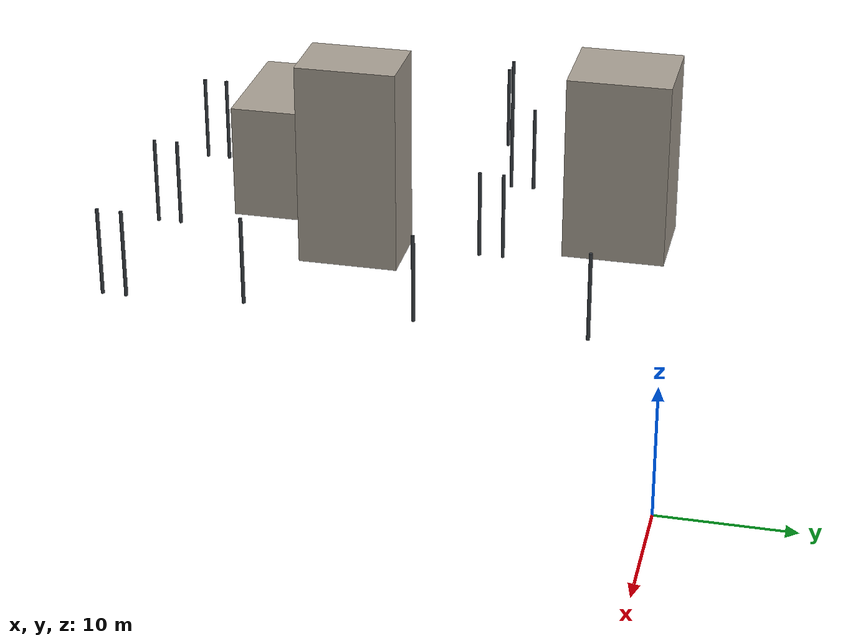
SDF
<sdf version="1.5">
 <world name="robocup_training_city_full_s7">
  <model name="building_0164">
   <static>true</static>
   <pose>-45.22436 -36.002927 0 0 0 0</pose>
   <link name="link">
    <pose>0 0 4.933902 0 0 0</pose>
    <collision name="collision">
     <geometry><box><size>11.184322 11.914767 9.867803</size></box></geometry>
     <surface><friction><ode><mu>1</mu><mu2>1</mu2></ode></friction></surface>
    </collision>
    <visual name="visual">
     <geometry><box><size>11.184322 11.914767 9.867803</size></box></geometry>
     <material>
      <ambient>0.297 0.2835 0.261 1</ambient>
      <diffuse>0.66 0.63 0.58 1</diffuse>
      <specular>0.04 0.04 0.04 1</specular>
      <emissive>0 0 0 1</emissive>
     </material>
    </visual>
    <inertial>
     <mass>1</mass>
     <inertia>
      <ixx>19.944601</ixx>
      <ixy>0</ixy>
      <ixz>0</ixz>
      <iyy>18.53855</iyy>
      <iyz>0</iyz>
      <izz>22.254228</izz>
     </inertia>
    </inertial>
   </link>
  </model>
  <model name="building_0171">
   <static>true</static>
   <pose>-34.935963 -29.924366 0 0 0 0</pose>
   <link name="link">
    <pose>0 0 8.61469 0 0 0</pose>
    <collision name="collision">
     <geometry><box><size>5.716327 8.323339 17.22938</size></box></geometry>
     <surface><friction><ode><mu>1</mu><mu2>1</mu2></ode></friction></surface>
    </collision>
    <visual name="visual">
     <geometry><box><size>5.716327 8.323339 17.22938</size></box></geometry>
     <material>
      <ambient>0.297 0.2835 0.261 1</ambient>
      <diffuse>0.66 0.63 0.58 1</diffuse>
      <specular>0.04 0.04 0.04 1</specular>
      <emissive>0 0 0 1</emissive>
     </material>
    </visual>
    <inertial>
     <mass>1</mass>
     <inertia>
      <ixx>30.510792</ixx>
      <ixy>0</ixy>
      <ixz>0</ixz>
      <iyy>27.460661</iyy>
      <iyz>0</iyz>
      <izz>8.496197</izz>
     </inertia>
    </inertial>
   </link>
  </model>
  <model name="building_1106">
   <static>true</static>
   <pose>-41.575823 -8.622747 0 0 0 0</pose>
   <link name="link">
    <pose>0 0 7.890977 0 0 0</pose>
    <collision name="collision">
     <geometry><box><size>7.577471 8.568934 15.781954</size></box></geometry>
     <surface><friction><ode><mu>1</mu><mu2>1</mu2></ode></friction></surface>
    </collision>
    <visual name="visual">
     <geometry><box><size>7.577471 8.568934 15.781954</size></box></geometry>
     <material>
      <ambient>0.297 0.2835 0.261 1</ambient>
      <diffuse>0.66 0.63 0.58 1</diffuse>
      <specular>0.04 0.04 0.04 1</specular>
      <emissive>0 0 0 1</emissive>
     </material>
    </visual>
    <inertial>
     <mass>1</mass>
     <inertia>
      <ixx>26.874725</ixx>
      <ixy>0</ixy>
      <ixz>0</ixz>
      <iyy>25.540678</iyy>
      <iyz>0</iyz>
      <izz>10.903725</izz>
     </inertia>
    </inertial>
   </link>
  </model>
  <model name="lamp_post_2517">
   <static>true</static>
   <pose>-61.4 -35.696036 0 0 0 0</pose>
   <link name="link">
    <pose>0 0 3.75 0 0 0</pose>
    <collision name="collision">
     <geometry><cylinder><radius>0.15</radius><length>7.5</length></cylinder></geometry>
     <surface><friction><ode><mu>1</mu><mu2>1</mu2></ode></friction></surface>
    </collision>
    <visual name="visual">
     <geometry><cylinder><radius>0.15</radius><length>7.5</length></cylinder></geometry>
     <material>
      <ambient>0.09 0.099 0.108 1</ambient>
      <diffuse>0.2 0.22 0.24 1</diffuse>
      <specular>0.04 0.04 0.04 1</specular>
      <emissive>0 0 0 1</emissive>
     </material>
    </visual>
    <inertial>
     <mass>1</mass>
     <inertia>
      <ixx>4.693125</ixx>
      <ixy>0</ixy>
      <ixz>0</ixz>
      <iyy>4.693125</iyy>
      <iyz>0</iyz>
      <izz>0.01125</izz>
     </inertia>
    </inertial>
   </link>
  </model>
  <model name="lamp_post_2518">
   <static>true</static>
   <pose>-59.4 -35.696036 0 0 0 0</pose>
   <link name="link">
    <pose>0 0 3.75 0 0 0</pose>
    <collision name="collision">
     <geometry><cylinder><radius>0.15</radius><length>7.5</length></cylinder></geometry>
     <surface><friction><ode><mu>1</mu><mu2>1</mu2></ode></friction></surface>
    </collision>
    <visual name="visual">
     <geometry><cylinder><radius>0.15</radius><length>7.5</length></cylinder></geometry>
     <material>
      <ambient>0.09 0.099 0.108 1</ambient>
      <diffuse>0.2 0.22 0.24 1</diffuse>
      <specular>0.04 0.04 0.04 1</specular>
      <emissive>0 0 0 1</emissive>
     </material>
    </visual>
    <inertial>
     <mass>1</mass>
     <inertia>
      <ixx>4.693125</ixx>
      <ixy>0</ixy>
      <ixz>0</ixz>
      <iyy>4.693125</iyy>
      <iyz>0</iyz>
      <izz>0.01125</izz>
     </inertia>
    </inertial>
   </link>
  </model>
  <model name="lamp_post_2519">
   <static>true</static>
   <pose>-61.4 -21.696036 0 0 0 0</pose>
   <link name="link">
    <pose>0 0 3.75 0 0 0</pose>
    <collision name="collision">
     <geometry><cylinder><radius>0.15</radius><length>7.5</length></cylinder></geometry>
     <surface><friction><ode><mu>1</mu><mu2>1</mu2></ode></friction></surface>
    </collision>
    <visual name="visual">
     <geometry><cylinder><radius>0.15</radius><length>7.5</length></cylinder></geometry>
     <material>
      <ambient>0.09 0.099 0.108 1</ambient>
      <diffuse>0.2 0.22 0.24 1</diffuse>
      <specular>0.04 0.04 0.04 1</specular>
      <emissive>0 0 0 1</emissive>
     </material>
    </visual>
    <inertial>
     <mass>1</mass>
     <inertia>
      <ixx>4.693125</ixx>
      <ixy>0</ixy>
      <ixz>0</ixz>
      <iyy>4.693125</iyy>
      <iyz>0</iyz>
      <izz>0.01125</izz>
     </inertia>
    </inertial>
   </link>
  </model>
  <model name="lamp_post_2520">
   <static>true</static>
   <pose>-59.4 -21.696036 0 0 0 0</pose>
   <link name="link">
    <pose>0 0 3.75 0 0 0</pose>
    <collision name="collision">
     <geometry><cylinder><radius>0.15</radius><length>7.5</length></cylinder></geometry>
     <surface><friction><ode><mu>1</mu><mu2>1</mu2></ode></friction></surface>
    </collision>
    <visual name="visual">
     <geometry><cylinder><radius>0.15</radius><length>7.5</length></cylinder></geometry>
     <material>
      <ambient>0.09 0.099 0.108 1</ambient>
      <diffuse>0.2 0.22 0.24 1</diffuse>
      <specular>0.04 0.04 0.04 1</specular>
      <emissive>0 0 0 1</emissive>
     </material>
    </visual>
    <inertial>
     <mass>1</mass>
     <inertia>
      <ixx>4.693125</ixx>
      <ixy>0</ixy>
      <ixz>0</ixz>
      <iyy>4.693125</iyy>
      <iyz>0</iyz>
      <izz>0.01125</izz>
     </inertia>
    </inertial>
   </link>
  </model>
  <model name="lamp_post_2521">
   <static>true</static>
   <pose>-61.4 -7.696036 0 0 0 0</pose>
   <link name="link">
    <pose>0 0 3.75 0 0 0</pose>
    <collision name="collision">
     <geometry><cylinder><radius>0.15</radius><length>7.5</length></cylinder></geometry>
     <surface><friction><ode><mu>1</mu><mu2>1</mu2></ode></friction></surface>
    </collision>
    <visual name="visual">
     <geometry><cylinder><radius>0.15</radius><length>7.5</length></cylinder></geometry>
     <material>
      <ambient>0.09 0.099 0.108 1</ambient>
      <diffuse>0.2 0.22 0.24 1</diffuse>
      <specular>0.04 0.04 0.04 1</specular>
      <emissive>0 0 0 1</emissive>
     </material>
    </visual>
    <inertial>
     <mass>1</mass>
     <inertia>
      <ixx>4.693125</ixx>
      <ixy>0</ixy>
      <ixz>0</ixz>
      <iyy>4.693125</iyy>
      <iyz>0</iyz>
      <izz>0.01125</izz>
     </inertia>
    </inertial>
   </link>
  </model>
  <model name="lamp_post_2522">
   <static>true</static>
   <pose>-59.4 -7.696036 0 0 0 0</pose>
   <link name="link">
    <pose>0 0 3.75 0 0 0</pose>
    <collision name="collision">
     <geometry><cylinder><radius>0.15</radius><length>7.5</length></cylinder></geometry>
     <surface><friction><ode><mu>1</mu><mu2>1</mu2></ode></friction></surface>
    </collision>
    <visual name="visual">
     <geometry><cylinder><radius>0.15</radius><length>7.5</length></cylinder></geometry>
     <material>
      <ambient>0.09 0.099 0.108 1</ambient>
      <diffuse>0.2 0.22 0.24 1</diffuse>
      <specular>0.04 0.04 0.04 1</specular>
      <emissive>0 0 0 1</emissive>
     </material>
    </visual>
    <inertial>
     <mass>1</mass>
     <inertia>
      <ixx>4.693125</ixx>
      <ixy>0</ixy>
      <ixz>0</ixz>
      <iyy>4.693125</iyy>
      <iyz>0</iyz>
      <izz>0.01125</izz>
     </inertia>
    </inertial>
   </link>
  </model>
  <model name="lamp_post_2529">
   <static>true</static>
   <pose>-23.8 -36.355631 0 0 0 0</pose>
   <link name="link">
    <pose>0 0 3.75 0 0 0</pose>
    <collision name="collision">
     <geometry><cylinder><radius>0.15</radius><length>7.5</length></cylinder></geometry>
     <surface><friction><ode><mu>1</mu><mu2>1</mu2></ode></friction></surface>
    </collision>
    <visual name="visual">
     <geometry><cylinder><radius>0.15</radius><length>7.5</length></cylinder></geometry>
     <material>
      <ambient>0.09 0.099 0.108 1</ambient>
      <diffuse>0.2 0.22 0.24 1</diffuse>
      <specular>0.04 0.04 0.04 1</specular>
      <emissive>0 0 0 1</emissive>
     </material>
    </visual>
    <inertial>
     <mass>1</mass>
     <inertia>
      <ixx>4.693125</ixx>
      <ixy>0</ixy>
      <ixz>0</ixz>
      <iyy>4.693125</iyy>
      <iyz>0</iyz>
      <izz>0.01125</izz>
     </inertia>
    </inertial>
   </link>
  </model>
  <model name="lamp_post_2531">
   <static>true</static>
   <pose>-23.8 -22.355631 0 0 0 0</pose>
   <link name="link">
    <pose>0 0 3.75 0 0 0</pose>
    <collision name="collision">
     <geometry><cylinder><radius>0.15</radius><length>7.5</length></cylinder></geometry>
     <surface><friction><ode><mu>1</mu><mu2>1</mu2></ode></friction></surface>
    </collision>
    <visual name="visual">
     <geometry><cylinder><radius>0.15</radius><length>7.5</length></cylinder></geometry>
     <material>
      <ambient>0.09 0.099 0.108 1</ambient>
      <diffuse>0.2 0.22 0.24 1</diffuse>
      <specular>0.04 0.04 0.04 1</specular>
      <emissive>0 0 0 1</emissive>
     </material>
    </visual>
    <inertial>
     <mass>1</mass>
     <inertia>
      <ixx>4.693125</ixx>
      <ixy>0</ixy>
      <ixz>0</ixz>
      <iyy>4.693125</iyy>
      <iyz>0</iyz>
      <izz>0.01125</izz>
     </inertia>
    </inertial>
   </link>
  </model>
  <model name="lamp_post_2533">
   <static>true</static>
   <pose>-23.8 -8.355631 0 0 0 0</pose>
   <link name="link">
    <pose>0 0 3.75 0 0 0</pose>
    <collision name="collision">
     <geometry><cylinder><radius>0.15</radius><length>7.5</length></cylinder></geometry>
     <surface><friction><ode><mu>1</mu><mu2>1</mu2></ode></friction></surface>
    </collision>
    <visual name="visual">
     <geometry><cylinder><radius>0.15</radius><length>7.5</length></cylinder></geometry>
     <material>
      <ambient>0.09 0.099 0.108 1</ambient>
      <diffuse>0.2 0.22 0.24 1</diffuse>
      <specular>0.04 0.04 0.04 1</specular>
      <emissive>0 0 0 1</emissive>
     </material>
    </visual>
    <inertial>
     <mass>1</mass>
     <inertia>
      <ixx>4.693125</ixx>
      <ixy>0</ixy>
      <ixz>0</ixz>
      <iyy>4.693125</iyy>
      <iyz>0</iyz>
      <izz>0.01125</izz>
     </inertia>
    </inertial>
   </link>
  </model>
  <model name="lamp_post_2585">
   <static>true</static>
   <pose>-50.92744 -48 0 0 0 0</pose>
   <link name="link">
    <pose>0 0 3.75 0 0 0</pose>
    <collision name="collision">
     <geometry><cylinder><radius>0.15</radius><length>7.5</length></cylinder></geometry>
     <surface><friction><ode><mu>1</mu><mu2>1</mu2></ode></friction></surface>
    </collision>
    <visual name="visual">
     <geometry><cylinder><radius>0.15</radius><length>7.5</length></cylinder></geometry>
     <material>
      <ambient>0.09 0.099 0.108 1</ambient>
      <diffuse>0.2 0.22 0.24 1</diffuse>
      <specular>0.04 0.04 0.04 1</specular>
      <emissive>0 0 0 1</emissive>
     </material>
    </visual>
    <inertial>
     <mass>1</mass>
     <inertia>
      <ixx>4.693125</ixx>
      <ixy>0</ixy>
      <ixz>0</ixz>
      <iyy>4.693125</iyy>
      <iyz>0</iyz>
      <izz>0.01125</izz>
     </inertia>
    </inertial>
   </link>
  </model>
  <model name="lamp_post_2586">
   <static>true</static>
   <pose>-50.92744 -46 0 0 0 0</pose>
   <link name="link">
    <pose>0 0 3.75 0 0 0</pose>
    <collision name="collision">
     <geometry><cylinder><radius>0.15</radius><length>7.5</length></cylinder></geometry>
     <surface><friction><ode><mu>1</mu><mu2>1</mu2></ode></friction></surface>
    </collision>
    <visual name="visual">
     <geometry><cylinder><radius>0.15</radius><length>7.5</length></cylinder></geometry>
     <material>
      <ambient>0.09 0.099 0.108 1</ambient>
      <diffuse>0.2 0.22 0.24 1</diffuse>
      <specular>0.04 0.04 0.04 1</specular>
      <emissive>0 0 0 1</emissive>
     </material>
    </visual>
    <inertial>
     <mass>1</mass>
     <inertia>
      <ixx>4.693125</ixx>
      <ixy>0</ixy>
      <ixz>0</ixz>
      <iyy>4.693125</iyy>
      <iyz>0</iyz>
      <izz>0.01125</izz>
     </inertia>
    </inertial>
   </link>
  </model>
  <model name="lamp_post_2587">
   <static>true</static>
   <pose>-36.92744 -48 0 0 0 0</pose>
   <link name="link">
    <pose>0 0 3.75 0 0 0</pose>
    <collision name="collision">
     <geometry><cylinder><radius>0.15</radius><length>7.5</length></cylinder></geometry>
     <surface><friction><ode><mu>1</mu><mu2>1</mu2></ode></friction></surface>
    </collision>
    <visual name="visual">
     <geometry><cylinder><radius>0.15</radius><length>7.5</length></cylinder></geometry>
     <material>
      <ambient>0.09 0.099 0.108 1</ambient>
      <diffuse>0.2 0.22 0.24 1</diffuse>
      <specular>0.04 0.04 0.04 1</specular>
      <emissive>0 0 0 1</emissive>
     </material>
    </visual>
    <inertial>
     <mass>1</mass>
     <inertia>
      <ixx>4.693125</ixx>
      <ixy>0</ixy>
      <ixz>0</ixz>
      <iyy>4.693125</iyy>
      <iyz>0</iyz>
      <izz>0.01125</izz>
     </inertia>
    </inertial>
   </link>
  </model>
  <model name="lamp_post_2588">
   <static>true</static>
   <pose>-36.92744 -46 0 0 0 0</pose>
   <link name="link">
    <pose>0 0 3.75 0 0 0</pose>
    <collision name="collision">
     <geometry><cylinder><radius>0.15</radius><length>7.5</length></cylinder></geometry>
     <surface><friction><ode><mu>1</mu><mu2>1</mu2></ode></friction></surface>
    </collision>
    <visual name="visual">
     <geometry><cylinder><radius>0.15</radius><length>7.5</length></cylinder></geometry>
     <material>
      <ambient>0.09 0.099 0.108 1</ambient>
      <diffuse>0.2 0.22 0.24 1</diffuse>
      <specular>0.04 0.04 0.04 1</specular>
      <emissive>0 0 0 1</emissive>
     </material>
    </visual>
    <inertial>
     <mass>1</mass>
     <inertia>
      <ixx>4.693125</ixx>
      <ixy>0</ixy>
      <ixz>0</ixz>
      <iyy>4.693125</iyy>
      <iyz>0</iyz>
      <izz>0.01125</izz>
     </inertia>
    </inertial>
   </link>
  </model>
  <model name="lamp_post_2589">
   <static>true</static>
   <pose>-22.92744 -48 0 0 0 0</pose>
   <link name="link">
    <pose>0 0 3.75 0 0 0</pose>
    <collision name="collision">
     <geometry><cylinder><radius>0.15</radius><length>7.5</length></cylinder></geometry>
     <surface><friction><ode><mu>1</mu><mu2>1</mu2></ode></friction></surface>
    </collision>
    <visual name="visual">
     <geometry><cylinder><radius>0.15</radius><length>7.5</length></cylinder></geometry>
     <material>
      <ambient>0.09 0.099 0.108 1</ambient>
      <diffuse>0.2 0.22 0.24 1</diffuse>
      <specular>0.04 0.04 0.04 1</specular>
      <emissive>0 0 0 1</emissive>
     </material>
    </visual>
    <inertial>
     <mass>1</mass>
     <inertia>
      <ixx>4.693125</ixx>
      <ixy>0</ixy>
      <ixz>0</ixz>
      <iyy>4.693125</iyy>
      <iyz>0</iyz>
      <izz>0.01125</izz>
     </inertia>
    </inertial>
   </link>
  </model>
  <model name="lamp_post_2590">
   <static>true</static>
   <pose>-22.92744 -46 0 0 0 0</pose>
   <link name="link">
    <pose>0 0 3.75 0 0 0</pose>
    <collision name="collision">
     <geometry><cylinder><radius>0.15</radius><length>7.5</length></cylinder></geometry>
     <surface><friction><ode><mu>1</mu><mu2>1</mu2></ode></friction></surface>
    </collision>
    <visual name="visual">
     <geometry><cylinder><radius>0.15</radius><length>7.5</length></cylinder></geometry>
     <material>
      <ambient>0.09 0.099 0.108 1</ambient>
      <diffuse>0.2 0.22 0.24 1</diffuse>
      <specular>0.04 0.04 0.04 1</specular>
      <emissive>0 0 0 1</emissive>
     </material>
    </visual>
    <inertial>
     <mass>1</mass>
     <inertia>
      <ixx>4.693125</ixx>
      <ixy>0</ixy>
      <ixz>0</ixz>
      <iyy>4.693125</iyy>
      <iyz>0</iyz>
      <izz>0.01125</izz>
     </inertia>
    </inertial>
   </link>
  </model>
  <model name="lamp_post_2613">
   <static>true</static>
   <pose>-50.491232 -19.666667 0 0 0 0</pose>
   <link name="link">
    <pose>0 0 3.75 0 0 0</pose>
    <collision name="collision">
     <geometry><cylinder><radius>0.15</radius><length>7.5</length></cylinder></geometry>
     <surface><friction><ode><mu>1</mu><mu2>1</mu2></ode></friction></surface>
    </collision>
    <visual name="visual">
     <geometry><cylinder><radius>0.15</radius><length>7.5</length></cylinder></geometry>
     <material>
      <ambient>0.09 0.099 0.108 1</ambient>
      <diffuse>0.2 0.22 0.24 1</diffuse>
      <specular>0.04 0.04 0.04 1</specular>
      <emissive>0 0 0 1</emissive>
     </material>
    </visual>
    <inertial>
     <mass>1</mass>
     <inertia>
      <ixx>4.693125</ixx>
      <ixy>0</ixy>
      <ixz>0</ixz>
      <iyy>4.693125</iyy>
      <iyz>0</iyz>
      <izz>0.01125</izz>
     </inertia>
    </inertial>
   </link>
  </model>
  <model name="lamp_post_2614">
   <static>true</static>
   <pose>-50.491232 -17.666667 0 0 0 0</pose>
   <link name="link">
    <pose>0 0 3.75 0 0 0</pose>
    <collision name="collision">
     <geometry><cylinder><radius>0.15</radius><length>7.5</length></cylinder></geometry>
     <surface><friction><ode><mu>1</mu><mu2>1</mu2></ode></friction></surface>
    </collision>
    <visual name="visual">
     <geometry><cylinder><radius>0.15</radius><length>7.5</length></cylinder></geometry>
     <material>
      <ambient>0.09 0.099 0.108 1</ambient>
      <diffuse>0.2 0.22 0.24 1</diffuse>
      <specular>0.04 0.04 0.04 1</specular>
      <emissive>0 0 0 1</emissive>
     </material>
    </visual>
    <inertial>
     <mass>1</mass>
     <inertia>
      <ixx>4.693125</ixx>
      <ixy>0</ixy>
      <ixz>0</ixz>
      <iyy>4.693125</iyy>
      <iyz>0</iyz>
      <izz>0.01125</izz>
     </inertia>
    </inertial>
   </link>
  </model>
  <model name="lamp_post_2615">
   <static>true</static>
   <pose>-36.491232 -19.666667 0 0 0 0</pose>
   <link name="link">
    <pose>0 0 3.75 0 0 0</pose>
    <collision name="collision">
     <geometry><cylinder><radius>0.15</radius><length>7.5</length></cylinder></geometry>
     <surface><friction><ode><mu>1</mu><mu2>1</mu2></ode></friction></surface>
    </collision>
    <visual name="visual">
     <geometry><cylinder><radius>0.15</radius><length>7.5</length></cylinder></geometry>
     <material>
      <ambient>0.09 0.099 0.108 1</ambient>
      <diffuse>0.2 0.22 0.24 1</diffuse>
      <specular>0.04 0.04 0.04 1</specular>
      <emissive>0 0 0 1</emissive>
     </material>
    </visual>
    <inertial>
     <mass>1</mass>
     <inertia>
      <ixx>4.693125</ixx>
      <ixy>0</ixy>
      <ixz>0</ixz>
      <iyy>4.693125</iyy>
      <iyz>0</iyz>
      <izz>0.01125</izz>
     </inertia>
    </inertial>
   </link>
  </model>
  <model name="lamp_post_2616">
   <static>true</static>
   <pose>-36.491232 -17.666667 0 0 0 0</pose>
   <link name="link">
    <pose>0 0 3.75 0 0 0</pose>
    <collision name="collision">
     <geometry><cylinder><radius>0.15</radius><length>7.5</length></cylinder></geometry>
     <surface><friction><ode><mu>1</mu><mu2>1</mu2></ode></friction></surface>
    </collision>
    <visual name="visual">
     <geometry><cylinder><radius>0.15</radius><length>7.5</length></cylinder></geometry>
     <material>
      <ambient>0.09 0.099 0.108 1</ambient>
      <diffuse>0.2 0.22 0.24 1</diffuse>
      <specular>0.04 0.04 0.04 1</specular>
      <emissive>0 0 0 1</emissive>
     </material>
    </visual>
    <inertial>
     <mass>1</mass>
     <inertia>
      <ixx>4.693125</ixx>
      <ixy>0</ixy>
      <ixz>0</ixz>
      <iyy>4.693125</iyy>
      <iyz>0</iyz>
      <izz>0.01125</izz>
     </inertia>
    </inertial>
   </link>
  </model>
 </world>
</sdf>
